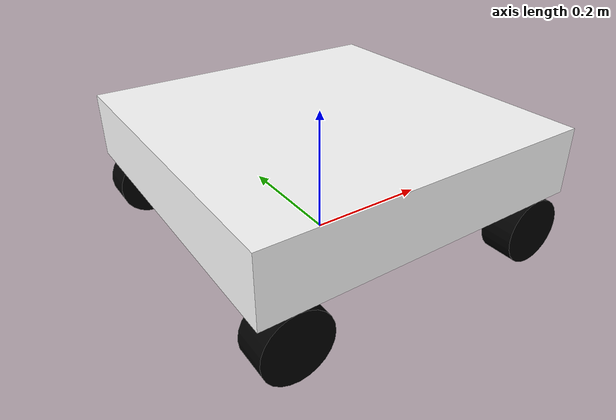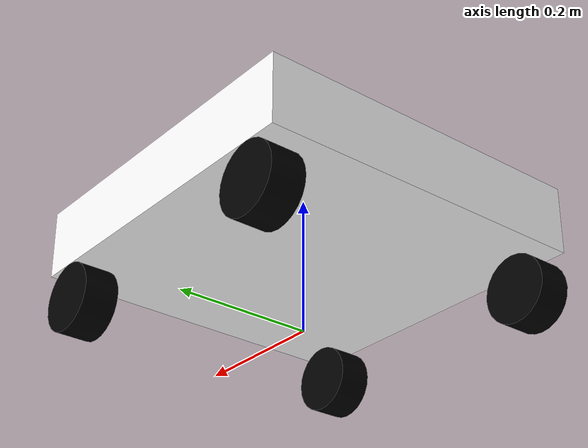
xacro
<?xml version="1.0"?>
<robot name="chipsy_ugv" xmlns:xacro="http://ros.org/wiki/xacro">

  <!-- DEFINING GENERIC PROPERTIES THAT ARE USED IN THE XACRO FILE -->

  <!-- along x axis -->
  <xacro:property name="base_length" value="0.5"/>
  <!-- along y axis -->
  <xacro:property name="base_width" value="0.5"/>
  <!-- along z axis -->
  <xacro:property name="base_height" value="0.1"/>
  <xacro:property name="base_mass" value="5"/>
  <xacro:property name="wheel_dia" value="0.1"/>
  <xacro:property name="wheel_height" value="0.05"/>
  <xacro:property name="wheel_mass" value="0.5"/>

  <!-- COLOURS FOR MATERIAL -->
  <material name="white">
    <color rgba="1 1 1 1"/>
  </material>

  <material name="black">
    <color rgba ="0 0 0 1"/>
  </material>

  <material name="green">
    <color rgba="0 1 0 1"/>
  </material>

  <!-- MACROS FOR INERTIAL PROPERTIES -->
  <xacro:macro name="base_inertial">
    <inertial>
      <mass value="${base_mass}" />
      <inertia ixx="${(1/12)*base_mass*((base_width*base_width)+(base_height*base_height))}"
        ixy="0.0"
        ixz="0.0"
        iyy="${(1/12)*base_mass*((base_height*base_height)+(base_length*base_length))}"
        iyz="0.0"
        izz="${(1/12)*base_mass*((base_width*base_width)+(base_length*base_length))}" />
    </inertial>
  </xacro:macro>

  <xacro:macro name="wheel_inertial">
    <inertial>
      <mass value="${wheel_mass}" />
      <inertia ixx="1.0" ixy="0.0" ixz="0.0" iyy="1.0" iyz="0.0" izz="1.0" />
    </inertial>
  </xacro:macro>

  <!-- MACRO FOR GENERIC WHEEL. SUPPLY PARAMS TO PLACE THEM, JOINT INCLUDEDE IN MACRO -->
  <xacro:macro name="wheel" params="left_right front_back relx rely">
    <link name="${left_right}_${front_back}_wheel">
      <visual>
        <origin xyz="0 0 0" rpy="${pi/2} 0 0"/>
        <geometry>
          <cylinder radius="${wheel_dia/2}" length="${wheel_height}"/>
        </geometry>
        <material name="black"/>
      </visual>
      <collision>
        <origin xyz="0 0 0" rpy="${pi/2} 0 0"/>
        <geometry>
          <cylinder radius="${wheel_dia/2}" length="${wheel_height}"/>
        </geometry>
      </collision>
      <xacro:wheel_inertial/>
    </link>

    <joint name="${left_right}_${front_back}_wheel_to_base_link" type="continuous">
      <origin xyz="${relx*((base_length/2)-wheel_dia/2)} ${rely*((base_width/2-wheel_height/2))} ${wheel_dia/2}" rpy="0 0 0"/>
      <axis xyz="0 1 0" rpy="0 0 0"/>
      <parent link="base_link"/>
      <child link="${left_right}_${front_back}_wheel"/>
    </joint>
  </xacro:macro>

  <!-- DUMMY ROOT LINK SO THAT BASE LINK CAN BE GIVEN SOME MASS -->
  <link name="root_link"/>

  <!-- BASE LINK. MAIN BOX TO WHICH WHEEL AND EVERYTHING ELSE IS TO BE ATTACHED -->
  <link name="base_link">
    <visual>
      <origin xyz="0 0 ${wheel_dia + base_height/2}" rpy="0 0 0"/>
      <geometry>
        <box size="${base_length} ${base_width} ${base_height}"/>
      </geometry>
      <material name="white"/>
    </visual>
    <collision name="base_link_collision">
      <origin xyz="0 0 ${wheel_dia + base_height/2}" rpy="0 0 0"/>
      <geometry>
        <box size="${base_length} ${base_width} ${base_height}"/>
      </geometry>
    </collision>
    <xacro:base_inertial/>
  </link>

  <!-- CONNECT BASE LINK TO ROOT LINK -->
  <joint name="base_to_root_joint" type="fixed">
    <parent link="root_link"/>
    <child link="base_link"/>
  </joint>

  <!-- CREATING AN INSTANCE OF EACH WHEEL -->
  <xacro:wheel left_right="left" front_back="front" relx="1" rely="1"/>
  <xacro:wheel left_right="left" front_back="back" relx="-1" rely="1"/>
  <xacro:wheel left_right="right" front_back="back" relx="-1" rely="-1"/>
  <xacro:wheel left_right="right" front_back="front" relx="1" rely="-1"/>

  <!-- TESTING THE CUSTOM CONVEYOR BELT PLUGIN -->

  <!-- SKID STEER PLUGIN -->
  <gazebo>
    <plugin name="skid_steer_drive_controller" filename="libgazebo_ros_skid_steer_drive.so">
      <updateRate>100.0</updateRate>
      <robotNamespace>/chipsy_ugv</robotNamespace>
      <leftFrontJoint>left_front_wheel_to_base_link</leftFrontJoint>
      <rightFrontJoint>right_front_wheel_to_base_link</rightFrontJoint>
      <leftRearJoint>left_back_wheel_to_base_link</leftRearJoint>
      <rightRearJoint>right_back_wheel_to_base_link</rightRearJoint>
      <wheelSeparation>0.5</wheelSeparation>
      <wheelDiameter>0.1</wheelDiameter>
      <robotBaseFrame>base_link</robotBaseFrame>
      <torque>5</torque>
      <commandTopic>cmd_vel</commandTopic>
      <broadcastTF>false</broadcastTF>
    </plugin>
  </gazebo>

  <!-- JOINT STATE PUBLISHER -->
  <gazebo>
    <plugin name="joint_state_publisher" filename="libgazebo_ros_joint_state_publisher.so">
      <jointName>left_front_wheel_to_base_link, left_back_wheel_to_base_link,
      right_front_wheel_to_base_link, right_back_wheel_to_base_link</jointName>
    </plugin>
  </gazebo>

</robot>
